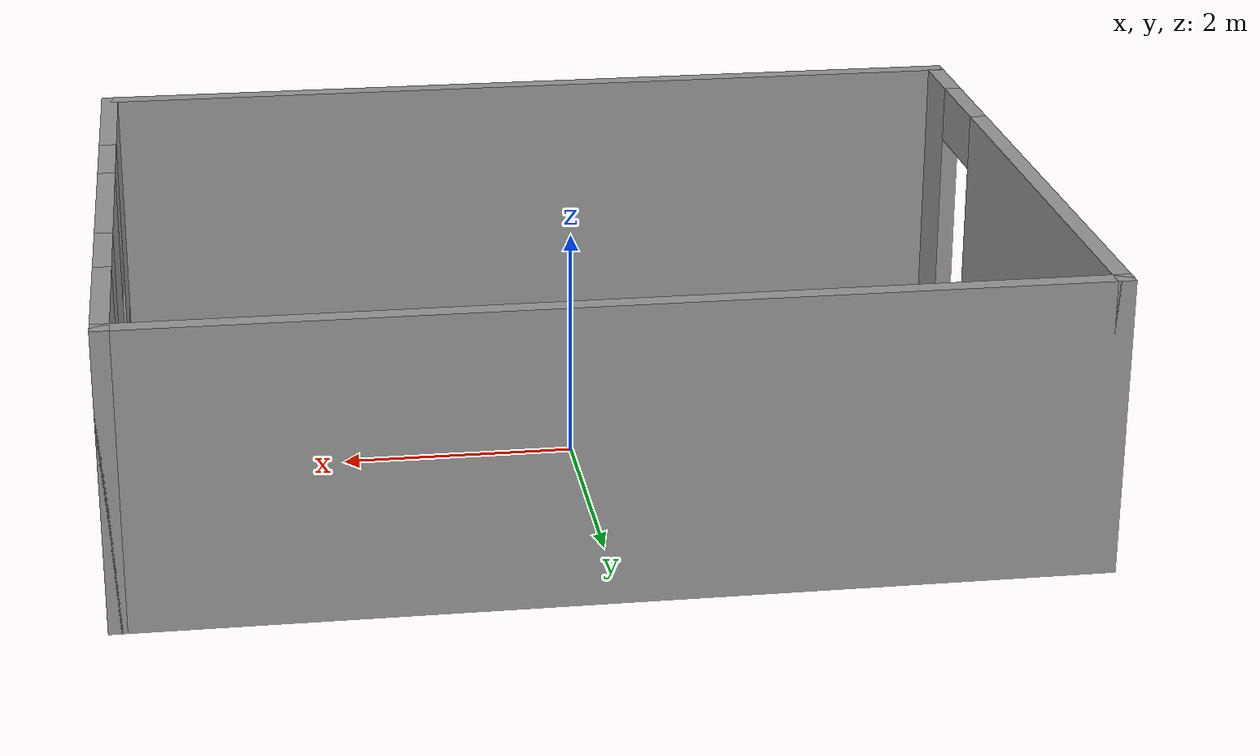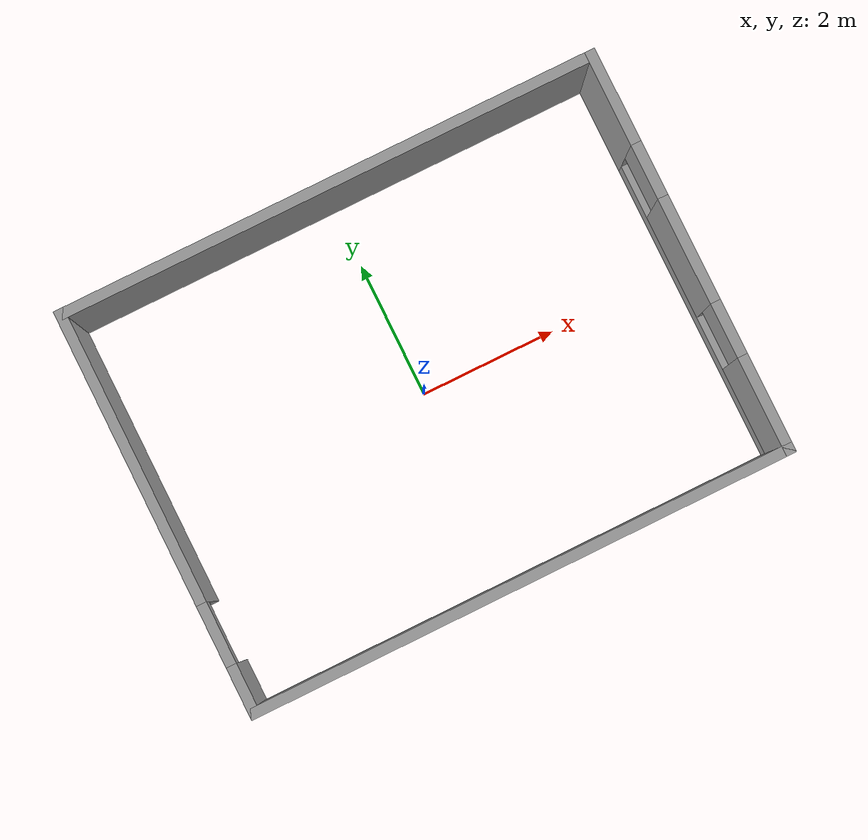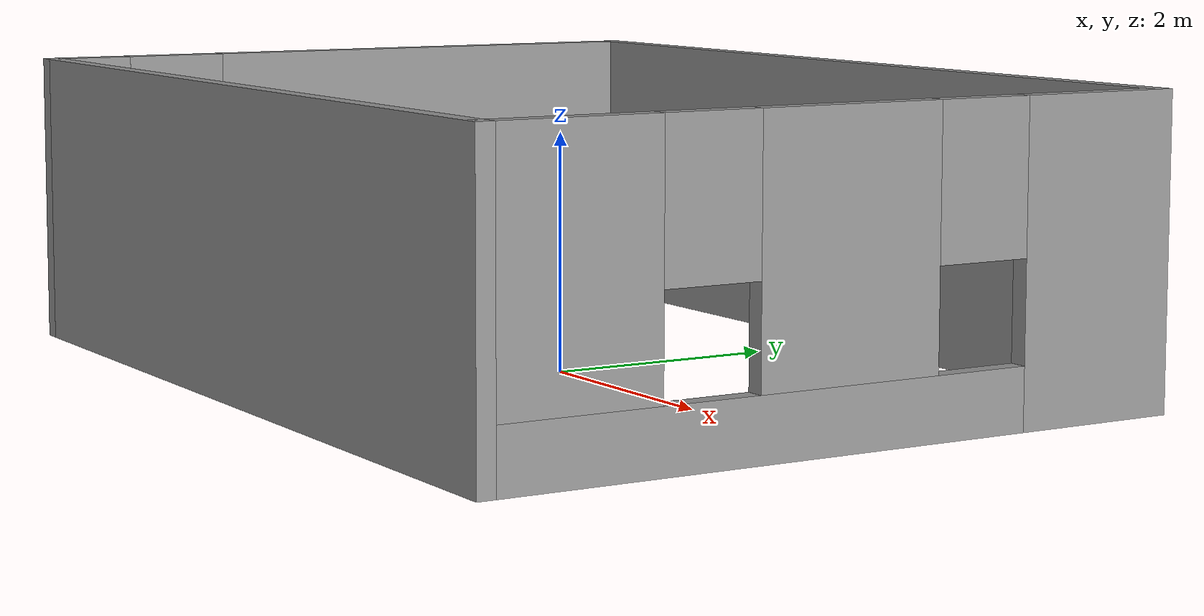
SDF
<?xml version='1.0'?>
<sdf version='1.6'>
  <model name='test_apartment_2'>
    <pose frame=''>0 0 0 0 -0 0</pose>
    <link name='Wall_1'>
      <pose frame=''>-3.925 0 0 0 -0 1.5708</pose>
      <visual name='Wall_1_Visual_0'>
        <pose frame=''>-2.61717 0 1.25 0 -0 0</pose>
        <geometry>
          <box>
            <size>0.765656 0.15 2.5</size>
          </box>
        </geometry>
        <material>
          <script>
            <uri>file://media/materials/scripts/gazebo.material</uri>
            <name>Gazebo/Grey</name>
          </script>
          <ambient>1 1 1 1</ambient>
        </material>
        <meta>
          <layer>0</layer>
        </meta>
      </visual>
      <collision name='Wall_1_Collision_0'>
        <geometry>
          <box>
            <size>0.765656 0.15 2.5</size>
          </box>
        </geometry>
        <pose frame=''>-2.61717 0 1.25 0 -0 0</pose>
      </collision>
      <visual name='Wall_1_Visual_1'>
        <pose frame=''>0.832828 0 1.25 0 -0 0</pose>
        <geometry>
          <box>
            <size>4.33434 0.15 2.5</size>
          </box>
        </geometry>
        <material>
          <script>
            <uri>file://media/materials/scripts/gazebo.material</uri>
            <name>Gazebo/Grey</name>
          </script>
          <ambient>1 1 1 1</ambient>
        </material>
        <meta>
          <layer>0</layer>
        </meta>
      </visual>
      <collision name='Wall_1_Collision_1'>
        <geometry>
          <box>
            <size>4.33434 0.15 2.5</size>
          </box>
        </geometry>
        <pose frame=''>0.832828 0 1.25 0 -0 0</pose>
      </collision>
      <visual name='Wall_1_Visual_2'>
        <pose frame=''>-1.78434 0 2.25 0 -0 0</pose>
        <geometry>
          <box>
            <size>0.9 0.15 0.5</size>
          </box>
        </geometry>
        <material>
          <script>
            <uri>file://media/materials/scripts/gazebo.material</uri>
            <name>Gazebo/Grey</name>
          </script>
          <ambient>1 1 1 1</ambient>
        </material>
        <meta>
          <layer>0</layer>
        </meta>
      </visual>
      <collision name='Wall_1_Collision_2'>
        <geometry>
          <box>
            <size>0.9 0.15 0.5</size>
          </box>
        </geometry>
        <pose frame=''>-1.78434 0 2.25 0 -0 0</pose>
      </collision>
    </link>
    <link name='Wall_2'>
      <collision name='Wall_2_Collision'>
        <geometry>
          <box>
            <size>8 0.15 2.5</size>
          </box>
        </geometry>
        <pose frame=''>0 0 1.25 0 -0 0</pose>
      </collision>
      <visual name='Wall_2_Visual'>
        <pose frame=''>0 0 1.25 0 -0 0</pose>
        <geometry>
          <box>
            <size>8 0.15 2.5</size>
          </box>
        </geometry>
        <material>
          <script>
            <uri>file://media/materials/scripts/gazebo.material</uri>
            <name>Gazebo/Grey</name>
          </script>
          <ambient>1 1 1 1</ambient>
        </material>
        <meta>
          <layer>0</layer>
        </meta>
      </visual>
      <pose frame=''>0 2.925 0 0 -0 0</pose>
    </link>
    <link name='Wall_3'>
      <pose frame=''>3.925 0 0 0 0 -1.5708</pose>
      <visual name='Wall_3_Visual_0'>
        <pose frame=''>-2.30589 0 1.25 0 -0 0</pose>
        <geometry>
          <box>
            <size>1.38822 0.15 2.5</size>
          </box>
        </geometry>
        <material>
          <script>
            <uri>file://media/materials/scripts/gazebo.material</uri>
            <name>Gazebo/Grey</name>
          </script>
          <ambient>1 1 1 1</ambient>
        </material>
        <meta>
          <layer>0</layer>
        </meta>
      </visual>
      <collision name='Wall_3_Collision_0'>
        <geometry>
          <box>
            <size>1.38822 0.15 2.5</size>
          </box>
        </geometry>
        <pose frame=''>-2.30589 0 1.25 0 -0 0</pose>
      </collision>
      <visual name='Wall_3_Visual_1'>
        <pose frame=''>0.69411 0 0.25 0 -0 0</pose>
        <geometry>
          <box>
            <size>4.61178 0.15 0.5</size>
          </box>
        </geometry>
        <material>
          <script>
            <uri>file://media/materials/scripts/gazebo.material</uri>
            <name>Gazebo/Grey</name>
          </script>
          <ambient>1 1 1 1</ambient>
        </material>
        <meta>
          <layer>0</layer>
        </meta>
      </visual>
      <collision name='Wall_3_Collision_1'>
        <geometry>
          <box>
            <size>4.61178 0.15 0.5</size>
          </box>
        </geometry>
        <pose frame=''>0.69411 0 0.25 0 -0 0</pose>
      </collision>
      <visual name='Wall_3_Visual_2'>
        <pose frame=''>-0.033102 0 1.5 0 -0 0</pose>
        <geometry>
          <box>
            <size>1.55736 0.15 2</size>
          </box>
        </geometry>
        <material>
          <script>
            <uri>file://media/materials/scripts/gazebo.material</uri>
            <name>Gazebo/Grey</name>
          </script>
          <ambient>1 1 1 1</ambient>
        </material>
        <meta>
          <layer>0</layer>
        </meta>
      </visual>
      <collision name='Wall_3_Collision_2'>
        <geometry>
          <box>
            <size>1.55736 0.15 2</size>
          </box>
        </geometry>
        <pose frame=''>-0.033102 0 1.5 0 -0 0</pose>
      </collision>
      <visual name='Wall_3_Visual_3'>
        <pose frame=''>2.27279 0 1.5 0 -0 0</pose>
        <geometry>
          <box>
            <size>1.45442 0.15 2</size>
          </box>
        </geometry>
        <material>
          <script>
            <uri>file://media/materials/scripts/gazebo.material</uri>
            <name>Gazebo/Grey</name>
          </script>
          <ambient>1 1 1 1</ambient>
        </material>
        <meta>
          <layer>0</layer>
        </meta>
      </visual>
      <collision name='Wall_3_Collision_3'>
        <geometry>
          <box>
            <size>1.45442 0.15 2</size>
          </box>
        </geometry>
        <pose frame=''>2.27279 0 1.5 0 -0 0</pose>
      </collision>
      <visual name='Wall_3_Visual_4'>
        <pose frame=''>-1.21178 0 1.9 0 -0 0</pose>
        <geometry>
          <box>
            <size>0.8 0.15 1.2</size>
          </box>
        </geometry>
        <material>
          <script>
            <uri>file://media/materials/scripts/gazebo.material</uri>
            <name>Gazebo/Grey</name>
          </script>
          <ambient>1 1 1 1</ambient>
        </material>
        <meta>
          <layer>0</layer>
        </meta>
      </visual>
      <collision name='Wall_3_Collision_4'>
        <geometry>
          <box>
            <size>0.8 0.15 1.2</size>
          </box>
        </geometry>
        <pose frame=''>-1.21178 0 1.9 0 -0 0</pose>
      </collision>
      <visual name='Wall_3_Visual_5'>
        <pose frame=''>1.14558 0 1.9 0 -0 0</pose>
        <geometry>
          <box>
            <size>0.8 0.15 1.2</size>
          </box>
        </geometry>
        <material>
          <script>
            <uri>file://media/materials/scripts/gazebo.material</uri>
            <name>Gazebo/Grey</name>
          </script>
          <ambient>1 1 1 1</ambient>
        </material>
        <meta>
          <layer>0</layer>
        </meta>
      </visual>
      <collision name='Wall_3_Collision_5'>
        <geometry>
          <box>
            <size>0.8 0.15 1.2</size>
          </box>
        </geometry>
        <pose frame=''>1.14558 0 1.9 0 -0 0</pose>
      </collision>
    </link>
    <link name='Wall_4'>
      <collision name='Wall_4_Collision'>
        <geometry>
          <box>
            <size>8 0.15 2.5</size>
          </box>
        </geometry>
        <pose frame=''>0 0 1.25 0 -0 0</pose>
      </collision>
      <visual name='Wall_4_Visual'>
        <pose frame=''>0 0 1.25 0 -0 0</pose>
        <geometry>
          <box>
            <size>8 0.15 2.5</size>
          </box>
        </geometry>
        <material>
          <script>
            <uri>file://media/materials/scripts/gazebo.material</uri>
            <name>Gazebo/Grey</name>
          </script>
          <ambient>1 1 1 1</ambient>
        </material>
        <meta>
          <layer>0</layer>
        </meta>
      </visual>
      <pose frame=''>0 -2.925 0 0 -0 3.14159</pose>
    </link>
    <static>1</static>
  </model>
</sdf>
